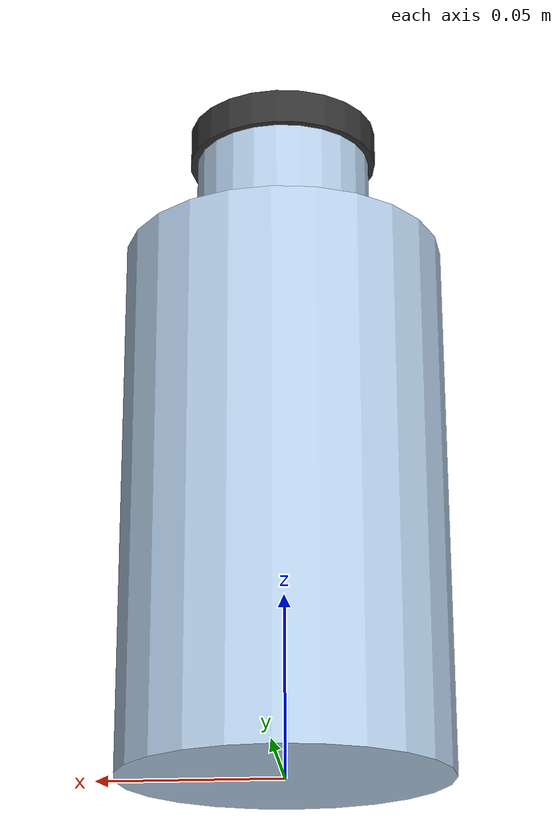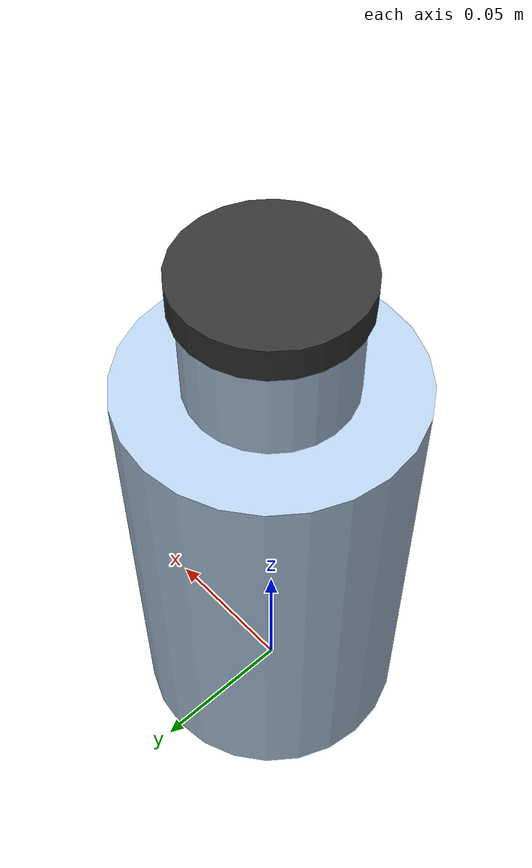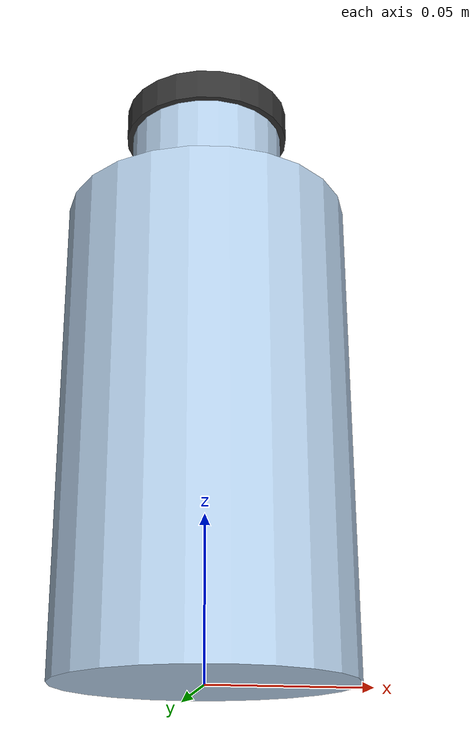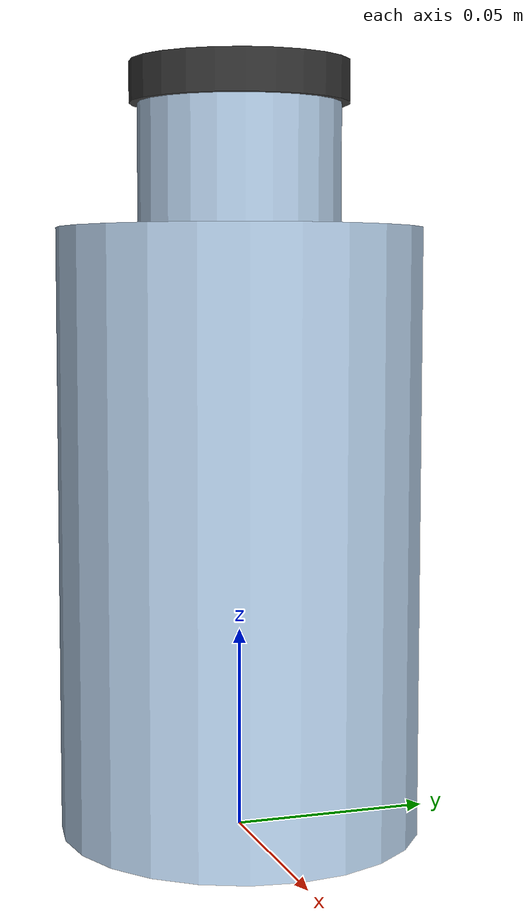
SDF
<?xml version="1.0" ?>

<sdf version="1.10">

  <model name="obstacle_bottle">

    <static>true</static>

    <link name="link">

      <!-- Bottle body -->
      <visual name="body_visual">
        <pose>0 0 0.075 0 0 0</pose>

        <geometry>
          <cylinder>
            <radius>0.045</radius>
            <length>0.15</length>
          </cylinder>
        </geometry>

        <material>
          <ambient>0.7 0.8 0.9 1</ambient>
          <diffuse>0.7 0.8 0.9 1</diffuse>
        </material>
      </visual>

      <!-- Bottle neck -->
      <visual name="neck_visual">
        <pose>0 0 0.165 0 0 0</pose>

        <geometry>
          <cylinder>
            <radius>0.025</radius>
            <length>0.03</length>
          </cylinder>
        </geometry>

        <material>
          <ambient>0.7 0.8 0.9 1</ambient>
          <diffuse>0.7 0.8 0.9 1</diffuse>
        </material>
      </visual>

      <!-- Bottle cap -->
      <visual name="cap_visual">
        <pose>0 0 0.185 0 0 0</pose>

        <geometry>
          <cylinder>
            <radius>0.027</radius>
            <length>0.01</length>
          </cylinder>
        </geometry>

        <material>
          <ambient>0.2 0.2 0.2 1</ambient>
          <diffuse>0.2 0.2 0.2 1</diffuse>
        </material>
      </visual>

      <!-- Simple collision geometry -->
      <collision name="collision">

        <pose>0 0 0.075 0 0 0</pose>

        <geometry>
          <cylinder>
            <radius>0.045</radius>
            <length>0.15</length>
          </cylinder>
        </geometry>

      </collision>

    </link>

  </model>

</sdf>
